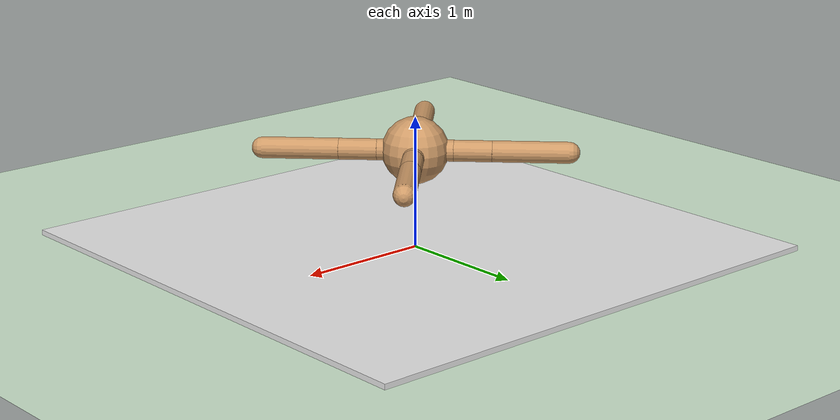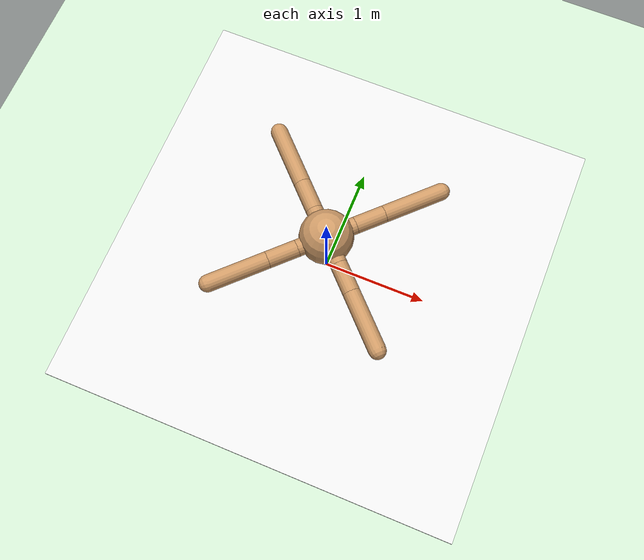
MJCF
<mujoco model="ant">
  <!-- ★ 安定化のための物理設定を適用 -->
  <compiler angle="degree" coordinate="local" inertiafromgeom="true"/>
  <option integrator="RK4" timestep="0.005"/>
  <custom>
    <!-- ★ ベースのant_uneven.xmlの初期姿勢を維持 -->
    <numeric data="0.0 0.0 0.55 1.0 0.0 0.0 0.0 0.0 1.0 0.0 -1.0 0.0 -1.0 0.0 1.0" name="init_qpos"/>
  </custom>

  <default>
    <!-- ★ 安定化のためarmatureを調整し、接触パラメータを追加 -->
    <joint armature="0.1" damping="1" limited="true"/>
    <geom contype="1" conaffinity="1" condim="3" density="1.0" friction="1 0.5 0.5" margin="0.01" rgba="0.8 0.6 0.4 1" solref="0.02 1" solimp="0.9 0.95 0.001"/>
  </default>

  <asset>
    <texture builtin="gradient" height="100" rgb1="1 1 1" rgb2="0 0 0" type="skybox" width="100"/>
    <texture builtin="flat" height="1278" mark="cross" markrgb="1 1 1" name="texgeom" random="0.01" rgb1="0.8 0.6 0.4" rgb2="0.8 0.6 0.4" type="cube" width="127"/>
    <texture builtin="checker" height="100" name="texplane" rgb1="0 0 0" rgb2="0.8 0.8 0.8" type="2d" width="100"/>
    <material name="MatPlane" reflectance="0.5" shininess="1" specular="1" texrepeat="60 60" texture="texplane"/>
    <material name="geom" texture="texgeom" texuniform="true"/>
    <material name="MatSoftBlock" reflectance="0.5" shininess="1" specular="1" texrepeat="10 10" texture="texplane"/>
  </asset>

  <worldbody>
    <light cutoff="100" diffuse="1 1 1" dir="-0 0 -1.3" directional="true" exponent="1" pos="0 0 1.3" specular=".1 .1 .1"/>
    <geom conaffinity="1" condim="3" material="MatPlane" name="floor" pos="0 0 0" rgba="0.8 0.9 0.8 1" size="40 40 40" type="plane"/>

    <!-- ★★★ ベースのant_uneven.xmlのロボットモデルを維持 ★★★ -->
    <body name="torso" pos="0 0 0.75">
      <camera name="track" mode="trackcom" pos="0 -3 0.3" xyaxes="1 0 0 0 0 1"/>
      <geom name="torso_geom" pos="0 0 0" size="0.25" type="sphere"/>
      <joint armature="0" damping="0" limited="false" margin="0.01" name="root" pos="0 0 0" type="free"/>
      <body name="front_left_leg" pos="0 0 0">
        <geom fromto="0.0 0.0 0.0 0.2 0.2 0.0" name="aux_1_geom" size="0.08" type="capsule"/>
        <body name="aux_1" pos="0.2 0.2 0">
          <joint axis="0 0 1" name="hip_1" pos="0.0 0.0 0.0" range="-30 30" type="hinge"/>
          <geom fromto="0.0 0.0 0.0 0.2 0.2 0.0" name="left_leg_geom" size="0.08" type="capsule"/>
          <body pos="0.2 0.2 0">
            <joint axis="-1 1 0" name="ankle_1" pos="0.0 0.0 0.0" range="30 70" type="hinge"/>
            <geom fromto="0.0 0.0 0.0 0.4 0.4 0.0" name="left_ankle_geom" size="0.08" type="capsule"/>
          </body>
        </body>
      </body>
      <body name="front_right_leg" pos="0 0 0">
        <geom fromto="0.0 0.0 0.0 -0.2 0.2 0.0" name="aux_2_geom" size="0.08" type="capsule"/>
        <body name="aux_2" pos="-0.2 0.2 0">
          <joint axis="0 0 1" name="hip_2" pos="0.0 0.0 0.0" range="-30 30" type="hinge"/>
          <geom fromto="0.0 0.0 0.0 -0.2 0.2 0.0" name="right_leg_geom" size="0.08" type="capsule"/>
          <body pos="-0.2 0.2 0">
            <joint axis="1 1 0" name="ankle_2" pos="0.0 0.0 0.0" range="-70 -30" type="hinge"/>
            <geom fromto="0.0 0.0 0.0 -0.4 0.4 0.0" name="right_ankle_geom" size="0.08" type="capsule"/>
          </body>
        </body>
      </body>
      <body name="back_leg" pos="0 0 0">
        <geom fromto="0.0 0.0 0.0 -0.2 -0.2 0.0" name="aux_3_geom" size="0.08" type="capsule"/>
        <body name="aux_3" pos="-0.2 -0.2 0">
          <joint axis="0 0 1" name="hip_3" pos="0.0 0.0 0.0" range="-30 30" type="hinge"/>
          <geom fromto="0.0 0.0 0.0 -0.2 -0.2 0.0" name="back_leg_geom" size="0.08" type="capsule"/>
          <body pos="-0.2 -0.2 0">
            <joint axis="-1 1 0" name="ankle_3" pos="0.0 0.0 0.0" range="-70 -30" type="hinge"/>
            <geom fromto="0.0 0.0 0.0 -0.4 -0.4 0.0" name="third_ankle_geom" size="0.08" type="capsule"/>
          </body>
        </body>
      </body>
      <body name="right_back_leg" pos="0 0 0">
        <geom fromto="0.0 0.0 0.0 0.2 -0.2 0.0" name="aux_4_geom" size="0.08" type="capsule"/>
        <body name="aux_4" pos="0.2 -0.2 0">
          <joint axis="0 0 1" name="hip_4" pos="0.0 0.0 0.0" range="-30 30" type="hinge"/>
          <geom fromto="0.0 0.0 0.0 0.2 -0.2 0.0" name="rightback_leg_geom" size="0.08" type="capsule"/>
          <body pos="0.2 -0.2 0">
            <joint axis="1 1 0" name="ankle_4" pos="0.0 0.0 0.0" range="30 70" type="hinge"/>
            <geom fromto="0.0 0.0 0.0 0.4 -0.4 0.0" name="fourth_ankle_geom" size="0.08" type="capsule"/>
          </body>
        </body>
      </body>
    </body>

    <!-- ★★★ 沈み込む地面を追加 ★★★ -->
    <body name="softblock" pos="0 0 0.05">
      <joint name="soft_slide" type="slide" axis="0 0 1" damping="2" limited="true" range="-0.15 0.02" armature="0"/>
      <geom name="soft_geom" type="box" size="2 2 0.02" density="0.1" rgba="0.9 0.9 0.9 1" material="MatSoftBlock"/>
      <site name="soft_top" pos="0 0 0.02" size="0.01" rgba="1 0 0 0.5"/>

    </body>
    <site name="anchor_site" pos="0 0 0.07" size="0.01" rgba="0 1 0 0.5"/>

  </worldbody>

  <tendon>
    <spatial name="soft_spring" stiffness="150" damping="10">
      <site site="soft_top"/>
      <site site="anchor_site"/>
    </spatial>
  </tendon>

  <actuator>
    <!-- ★ 安定化のためgearの値を調整 -->
    <motor ctrllimited="true" ctrlrange="-1.0 1.0" joint="hip_1" gear="30"/>
    <motor ctrllimited="true" ctrlrange="-1.0 1.0" joint="ankle_1" gear="30"/>
    <motor ctrllimited="true" ctrlrange="-1.0 1.0" joint="hip_2" gear="30"/>
    <motor ctrllimited="true" ctrlrange="-1.0 1.0" joint="ankle_2" gear="30"/>
    <motor ctrllimited="true" ctrlrange="-1.0 1.0" joint="hip_3" gear="30"/>
    <motor ctrllimited="true" ctrlrange="-1.0 1.0" joint="ankle_3" gear="30"/>
    <motor ctrllimited="true" ctrlrange="-1.0 1.0" joint="hip_4" gear="30"/>
    <motor ctrllimited="true" ctrlrange="-1.0 1.0" joint="ankle_4" gear="30"/>
  </actuator>
</mujoco>
